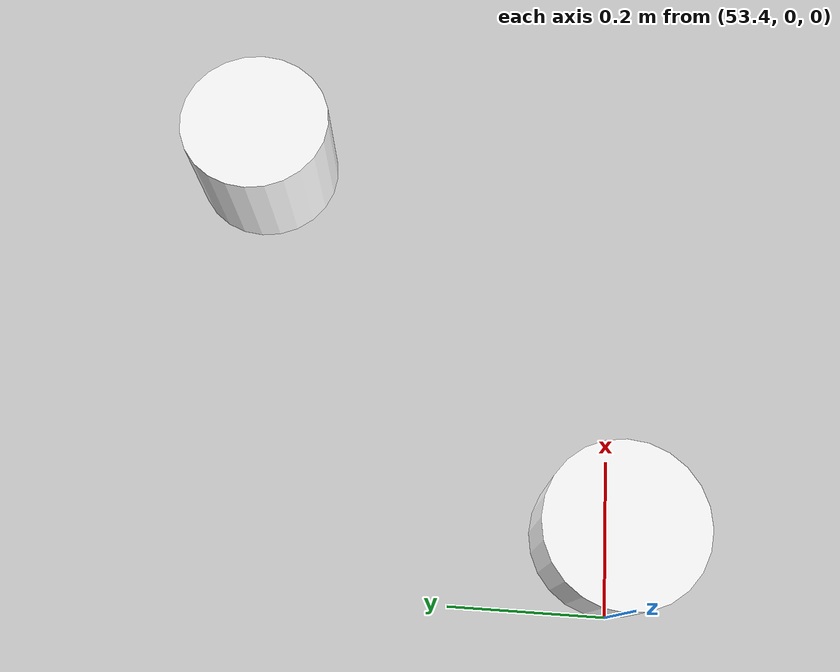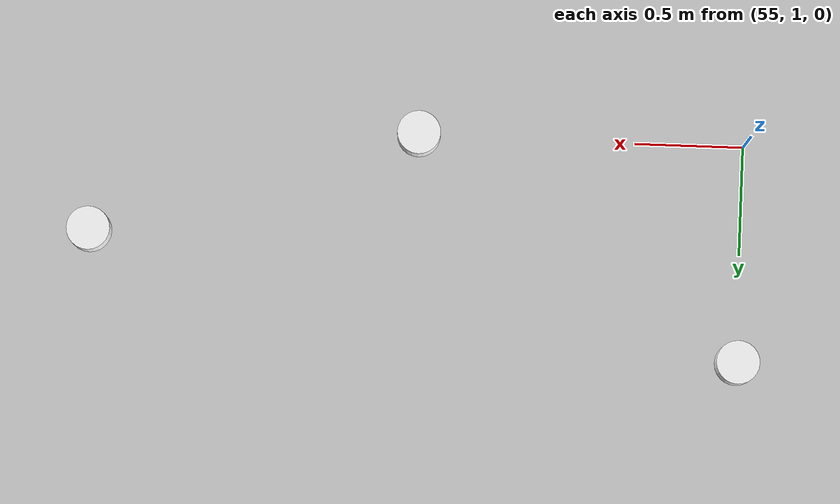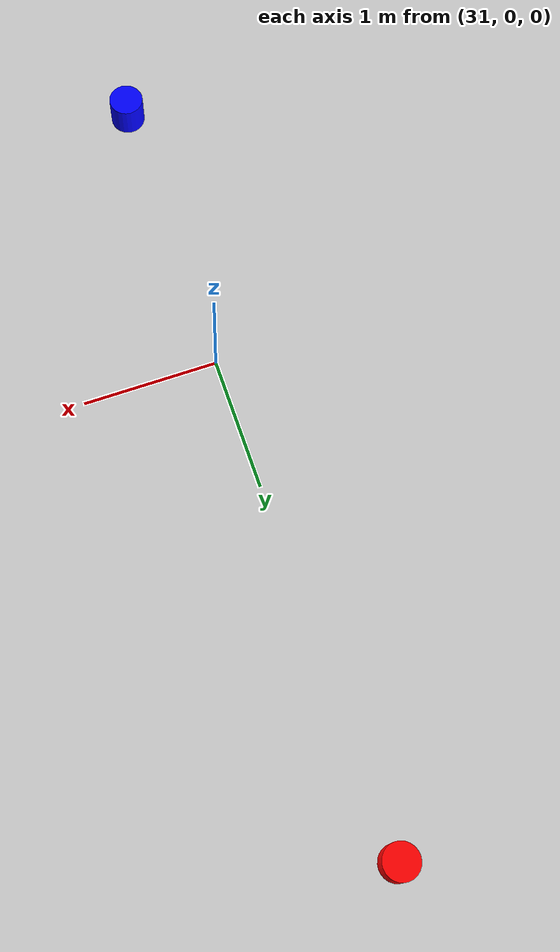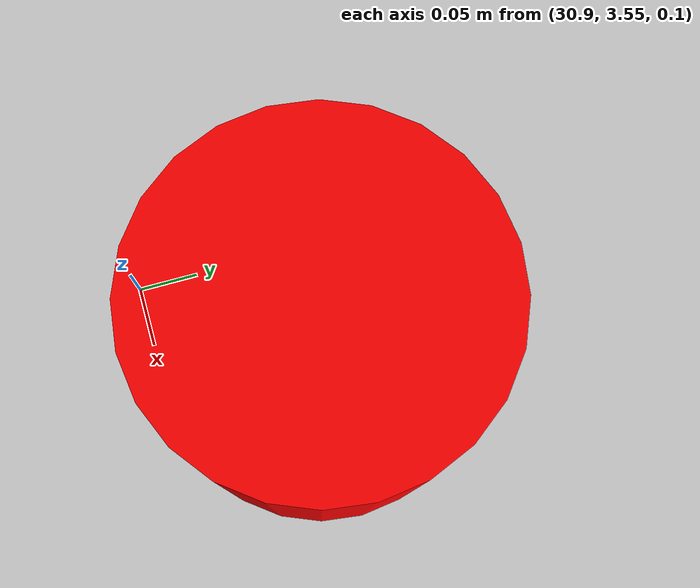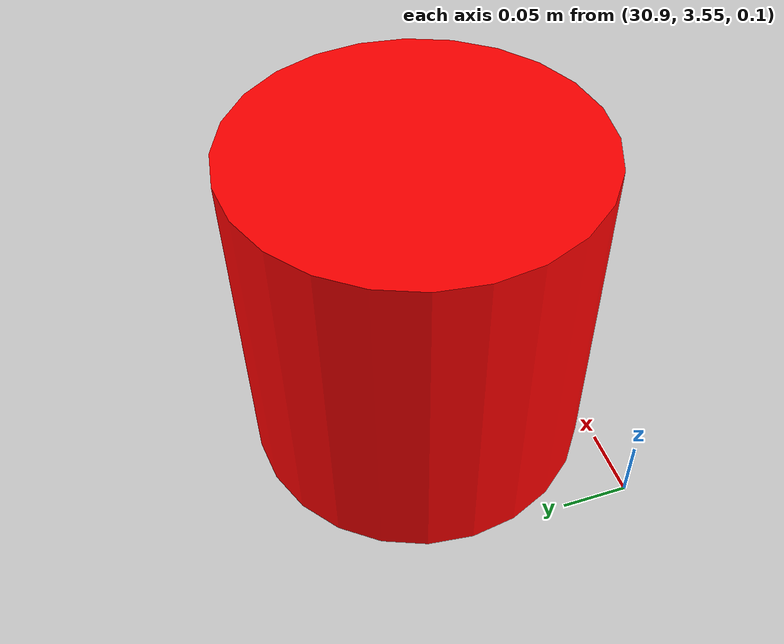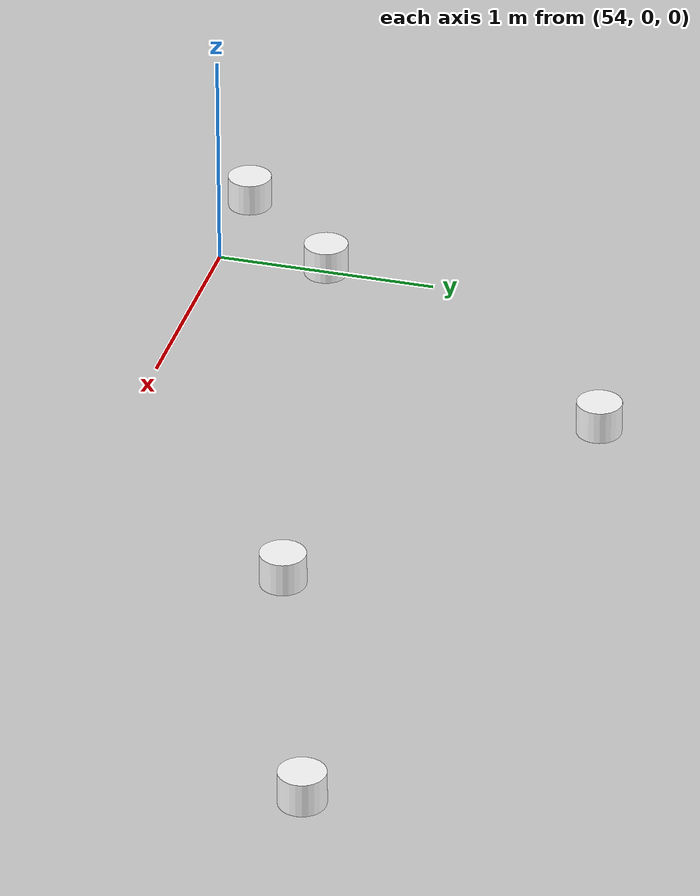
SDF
<?xml version="1.0" ?>
<sdf version="1.6">
  <world name="default">
    <plugin name="gazebo_ros_init" filename="libgazebo_ros_init.so"/>
    <plugin name="gazebo_ros_state" filename="libgazebo_ros_state.so"/>

    <include>
      <uri>model://sun</uri>
    </include>

    <include>
      <uri>model://ground_plane</uri>
    </include>

    <!-- 投放区 (30m): 红桶1 — NED (2.7, 30) → Gazebo (31.01, 3.68, 0.25) -->
    <model name="red_bucket_1">
      <pose>31.01 3.68 0.25 0 0 0</pose>
      <link name="bucket1_link">
        <inertial>
          <mass>0.5</mass>
          <inertia>
            <ixx>0.01</ixx><ixy>0</ixy><ixz>0</ixz>
            <iyy>0.01</iyy><iyz>0</iyz>
            <izz>0.01</izz>
          </inertia>
        </inertial>
        <collision name="bucket1_collision">
          <geometry>
            <cylinder><radius>0.125</radius><length>0.25</length></cylinder>
          </geometry>
        </collision>
        <visual name="bucket1_visual">
          <geometry>
            <cylinder><radius>0.125</radius><length>0.25</length></cylinder>
          </geometry>
          <material>
            <ambient>1 0 0 1</ambient>
            <diffuse>1 0 0 1</diffuse>
          </material>
        </visual>
      </link>
    </model>

    <!-- 投放区: 蓝桶2 — NED (-3.1, 30) → Gazebo (31.01, -2.12, 0.25) -->
    <model name="blue_bucket_2">
      <pose>31.01 -2.12 0.25 0 0 0</pose>
      <link name="bucket2_link">
        <inertial>
          <mass>0.5</mass>
          <inertia>
            <ixx>0.01</ixx><ixy>0</ixy><ixz>0</ixz>
            <iyy>0.01</iyy><iyz>0</iyz>
            <izz>0.01</izz>
          </inertia>
        </inertial>
        <collision name="bucket2_collision">
          <geometry>
            <cylinder><radius>0.125</radius><length>0.25</length></cylinder>
          </geometry>
        </collision>
        <visual name="bucket2_visual">
          <geometry>
            <cylinder><radius>0.125</radius><length>0.25</length></cylinder>
          </geometry>
          <material>
            <ambient>0 0 1 1</ambient>
            <diffuse>0 0 1 1</diffuse>
          </material>
        </visual>
      </link>
    </model>

    <!-- 侦察区 (55m): 5 个白色圆筒 -->
    <model name="scout_cylinder_1">
      <pose>53.5 0.0 0.075 0 0 0</pose>
      <link name="cylinder1_link">
        <inertial><mass>0.3</mass><inertia><ixx>0.005</ixx><ixy>0</ixy><ixz>0</ixz><iyy>0.005</iyy><iyz>0</iyz><izz>0.005</izz></inertia></inertial>
        <collision name="cylinder1_collision"><geometry><cylinder><radius>0.10</radius><length>0.15</length></cylinder></geometry></collision>
        <visual name="cylinder1_visual"><geometry><cylinder><radius>0.10</radius><length>0.15</length></cylinder></geometry><material><ambient>1 1 1 1</ambient><diffuse>1 1 1 1</diffuse></material></visual>
      </link>
    </model>

    <model name="scout_cylinder_2">
      <pose>55.0 2.0 0.075 0 0 0</pose>
      <link name="cylinder2_link">
        <inertial><mass>0.3</mass><inertia><ixx>0.005</ixx><ixy>0</ixy><ixz>0</ixz><iyy>0.005</iyy><iyz>0</iyz><izz>0.005</izz></inertia></inertial>
        <collision name="cylinder2_collision"><geometry><cylinder><radius>0.10</radius><length>0.15</length></cylinder></geometry></collision>
        <visual name="cylinder2_visual"><geometry><cylinder><radius>0.10</radius><length>0.15</length></cylinder></geometry><material><ambient>1 1 1 1</ambient><diffuse>1 1 1 1</diffuse></material></visual>
      </link>
    </model>

    <model name="scout_cylinder_3">
      <pose>56.5 1.0 0.075 0 0 0</pose>
      <link name="cylinder3_link">
        <inertial><mass>0.3</mass><inertia><ixx>0.005</ixx><ixy>0</ixy><ixz>0</ixz><iyy>0.005</iyy><iyz>0</iyz><izz>0.005</izz></inertia></inertial>
        <collision name="cylinder3_collision"><geometry><cylinder><radius>0.10</radius><length>0.15</length></cylinder></geometry></collision>
        <visual name="cylinder3_visual"><geometry><cylinder><radius>0.10</radius><length>0.15</length></cylinder></geometry><material><ambient>1 1 1 1</ambient><diffuse>1 1 1 1</diffuse></material></visual>
      </link>
    </model>

    <model name="scout_cylinder_4">
      <pose>58.0 1.5 0.075 0 0 0</pose>
      <link name="cylinder4_link">
        <inertial><mass>0.3</mass><inertia><ixx>0.005</ixx><ixy>0</ixy><ixz>0</ixz><iyy>0.005</iyy><iyz>0</iyz><izz>0.005</izz></inertia></inertial>
        <collision name="cylinder4_collision"><geometry><cylinder><radius>0.10</radius><length>0.15</length></cylinder></geometry></collision>
        <visual name="cylinder4_visual"><geometry><cylinder><radius>0.10</radius><length>0.15</length></cylinder></geometry><material><ambient>1 1 1 1</ambient><diffuse>1 1 1 1</diffuse></material></visual>
      </link>
    </model>

    <model name="scout_cylinder_5">
      <pose>54.0 0.5 0.075 0 0 0</pose>
      <link name="cylinder5_link">
        <inertial><mass>0.3</mass><inertia><ixx>0.005</ixx><ixy>0</ixy><ixz>0</ixz><iyy>0.005</iyy><iyz>0</iyz><izz>0.005</izz></inertia></inertial>
        <collision name="cylinder5_collision"><geometry><cylinder><radius>0.10</radius><length>0.15</length></cylinder></geometry></collision>
        <visual name="cylinder5_visual"><geometry><cylinder><radius>0.10</radius><length>0.15</length></cylinder></geometry><material><ambient>1 1 1 1</ambient><diffuse>1 1 1 1</diffuse></material></visual>
      </link>
    </model>

  </world>
</sdf>
